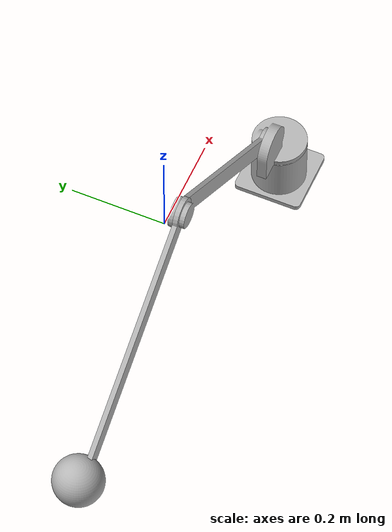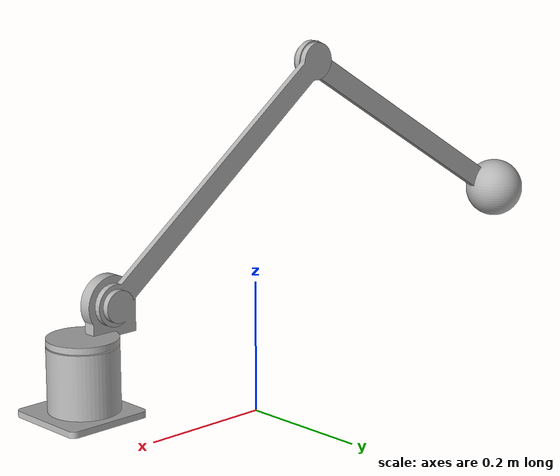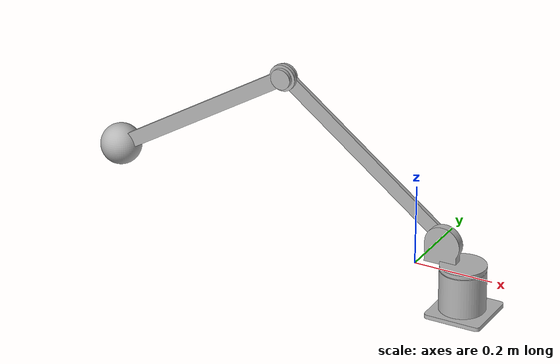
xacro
<?xml version="1.0" ?>
<robot name="test" xmlns:xacro="http://www.ros.org/wiki/xacro">

<xacro:include filename="$(find test_description)/urdf/materials.xacro" />
<xacro:include filename="$(find test_description)/urdf/test.trans" />
<xacro:include filename="$(find test_description)/urdf/test.gazebo" />

<link name="world"/>

  <joint name="base_joint" type="fixed">
    <parent link="world"/>
    <child link="base_link"/>
    <origin rpy="0 0 3.142" xyz="0.0 0.0 0.0"/>
  </joint>

<link name="base_link">
  <inertial>
    <origin xyz="-0.24077386638185738 0.20432433824598012 0.13366152170630938" rpy="0 0 0"/>
    <mass value="8.807004689881243"/>
    <inertia ixx="0.01745" iyy="0.017481" izz="0.016047" ixy="-0.0" iyz="-4e-06" ixz="-0.000337"/>
  </inertial>
  <visual>
    <origin xyz="0 0 0" rpy="0 0 0"/>
    <geometry>
      <mesh filename="package://test_description/meshes/base_link.stl" scale="0.001 0.001 0.001"/>
    </geometry>
    <material name="silver"/>
  </visual>
  <collision>
    <origin xyz="0 0 0" rpy="0 0 0"/>
    <geometry>
      <mesh filename="package://test_description/meshes/base_link.stl" scale="0.001 0.001 0.001"/>
    </geometry>
  </collision>
</link>

<link name="link2_1">
  <inertial>
    <origin xyz="0.25033811293340824 0.004753685535508756 -0.1534903220953575" rpy="0 0 0"/>
    <mass value="1.7412672824899627"/>
    <inertia ixx="0.014156" iyy="0.051324" izz="0.037204" ixy="0.000102" iyz="-6.3e-05" ixz="0.022643"/>
  </inertial>
  <visual>
    <origin xyz="-0.228606 -0.195805 -0.568526" rpy="0 0 0"/>
    <geometry>
      <mesh filename="package://test_description/meshes/link2_1.stl" scale="0.001 0.001 0.001"/>
    </geometry>
    <material name="silver"/>
  </visual>
  <collision>
    <origin xyz="-0.228606 -0.195805 -0.568526" rpy="0 0 0"/>
    <geometry>
      <mesh filename="package://test_description/meshes/link2_1.stl" scale="0.001 0.001 0.001"/>
    </geometry>
  </collision>
</link>

<link name="joint2_1">
  <inertial>
    <origin xyz="2.4738258042056316e-07 3.743536494404953e-07 4.6618096466444214e-07" rpy="0 0 0"/>
    <mass value="4.110250388446645"/>
    <inertia ixx="0.00411" iyy="0.00411" izz="0.00411" ixy="0.0" iyz="0.0" ixz="0.0"/>
  </inertial>
  <visual>
    <origin xyz="-0.677835 -0.190958 -0.293092" rpy="0 0 0"/>
    <geometry>
      <mesh filename="package://test_description/meshes/joint2_1.stl" scale="0.001 0.001 0.001"/>
    </geometry>
    <material name="silver"/>
  </visual>
  <collision>
    <origin xyz="-0.677835 -0.190958 -0.293092" rpy="0 0 0"/>
    <geometry>
      <mesh filename="package://test_description/meshes/joint2_1.stl" scale="0.001 0.001 0.001"/>
    </geometry>
  </collision>
</link>

<link name="link1_1">
  <inertial>
    <origin xyz="0.2548801212621622 -0.0025690531207694656 0.19512478531380967" rpy="0 0 0"/>
    <mass value="1.9724688668400512"/>
    <inertia ixx="0.023255" iyy="0.062504" izz="0.039415" ixy="-0.00077" iyz="-0.000589" ixz="-0.029888"/>
  </inertial>
  <visual>
    <origin xyz="0.189804 -0.195663 -0.248209" rpy="0 0 0"/>
    <geometry>
      <mesh filename="package://test_description/meshes/link1_1.stl" scale="0.001 0.001 0.001"/>
    </geometry>
    <material name="silver"/>
  </visual>
  <collision>
    <origin xyz="0.189804 -0.195663 -0.248209" rpy="0 0 0"/>
    <geometry>
      <mesh filename="package://test_description/meshes/link1_1.stl" scale="0.001 0.001 0.001"/>
    </geometry>
  </collision>
</link>

<link name="joint1_1">
  <inertial>
    <origin xyz="0.029419365543741277 -0.0017770232664749142 0.033762282464333215" rpy="0 0 0"/>
    <mass value="2.4354806308440864"/>
    <inertia ixx="0.002855" iyy="0.004946" izz="0.0039" ixy="8.6e-05" iyz="0.000107" ixz="-0.001337"/>
  </inertial>
  <visual>
    <origin xyz="0.239912 -0.204334 -0.191247" rpy="0 0 0"/>
    <geometry>
      <mesh filename="package://test_description/meshes/joint1_1.stl" scale="0.001 0.001 0.001"/>
    </geometry>
    <material name="silver"/>
  </visual>
  <collision>
    <origin xyz="0.239912 -0.204334 -0.191247" rpy="0 0 0"/>
    <geometry>
      <mesh filename="package://test_description/meshes/joint1_1.stl" scale="0.001 0.001 0.001"/>
    </geometry>
  </collision>
</link>

<joint name="Revolute 13" type="revolute">
  <origin xyz="0.41841 0.000142 0.320317" rpy="0 0 0"/>
  <parent link="link1_1"/>
  <child link="link2_1"/>
  <axis xyz="0.000341 -1.0 -0.0"/>
  <limit upper="3.839724" lower="-1.134464" effort="100" velocity="100"/>
</joint>

<joint name="Rigid 14" type="fixed">
  <origin xyz="0.449229 -0.004847 -0.275434" rpy="0 0 0"/>
  <parent link="link2_1"/>
  <child link="joint2_1"/>
</joint>

<joint name="Revolute 15" type="revolute">
  <origin xyz="0.050108 -0.008671 0.056962" rpy="0 0 0"/>
  <parent link="joint1_1"/>
  <child link="link1_1"/>
  <axis xyz="-0.000341 1.0 0.0"/>
  <limit upper="1.48353" lower="-2.617994" effort="100" velocity="100"/>
</joint>

<joint name="Revolute 16" type="revolute">
  <origin xyz="-0.239912 0.204334 0.191247" rpy="0 0 0"/>
  <parent link="base_link"/>
  <child link="joint1_1"/>
  <axis xyz="0.0 0.0 -1.0"/>
  <limit upper="0.0" lower="-6.283185" effort="100" velocity="100"/>
</joint>

</robot>

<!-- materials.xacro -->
<robot name="test" xmlns:xacro="http://www.ros.org/wiki/xacro" >

<material name="silver">
  <color rgba="0.700 0.700 0.700 1.000"/>
</material>

</robot>

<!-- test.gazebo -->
<robot name="test" xmlns:xacro="http://www.ros.org/wiki/xacro" >

<xacro:property name="body_color" value="Gazebo/Silver" />

<gazebo>
  <plugin name="control" filename="libgazebo_ros_control.so"/>
</gazebo>
<gazebo reference="base_link">
  <material>${body_color}</material>
  <mu1>0.2</mu1>
  <mu2>0.2</mu2>
  <selfCollide>true</selfCollide>
  <gravity>true</gravity>
</gazebo>

<gazebo reference="link2_1">
  <material>${body_color}</material>
  <mu1>0.2</mu1>
  <mu2>0.2</mu2>
  <selfCollide>true</selfCollide>
</gazebo>

<gazebo reference="joint2_1">
  <material>${body_color}</material>
  <mu1>0.2</mu1>
  <mu2>0.2</mu2>
  <selfCollide>true</selfCollide>
</gazebo>

<gazebo reference="link1_1">
  <material>${body_color}</material>
  <mu1>0.2</mu1>
  <mu2>0.2</mu2>
  <selfCollide>true</selfCollide>
</gazebo>

<gazebo reference="joint1_1">
  <material>${body_color}</material>
  <mu1>0.2</mu1>
  <mu2>0.2</mu2>
  <selfCollide>true</selfCollide>
</gazebo>

</robot>
